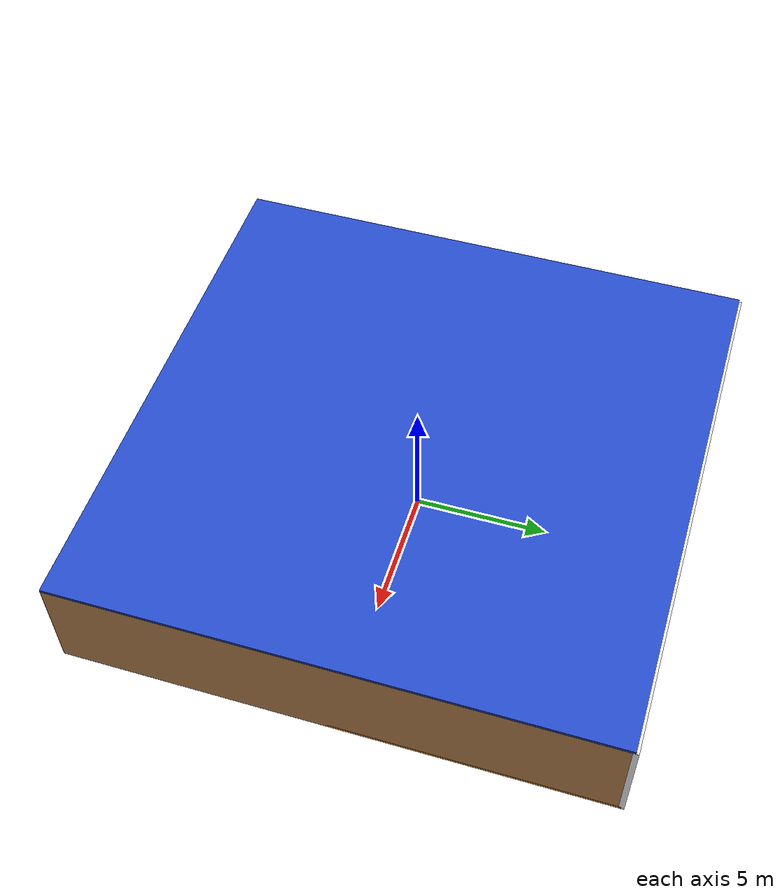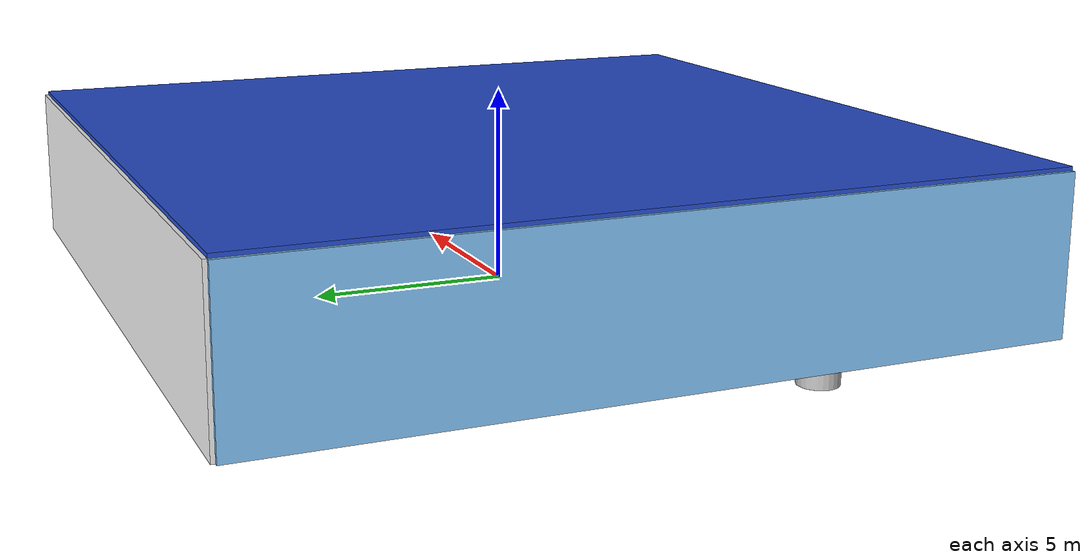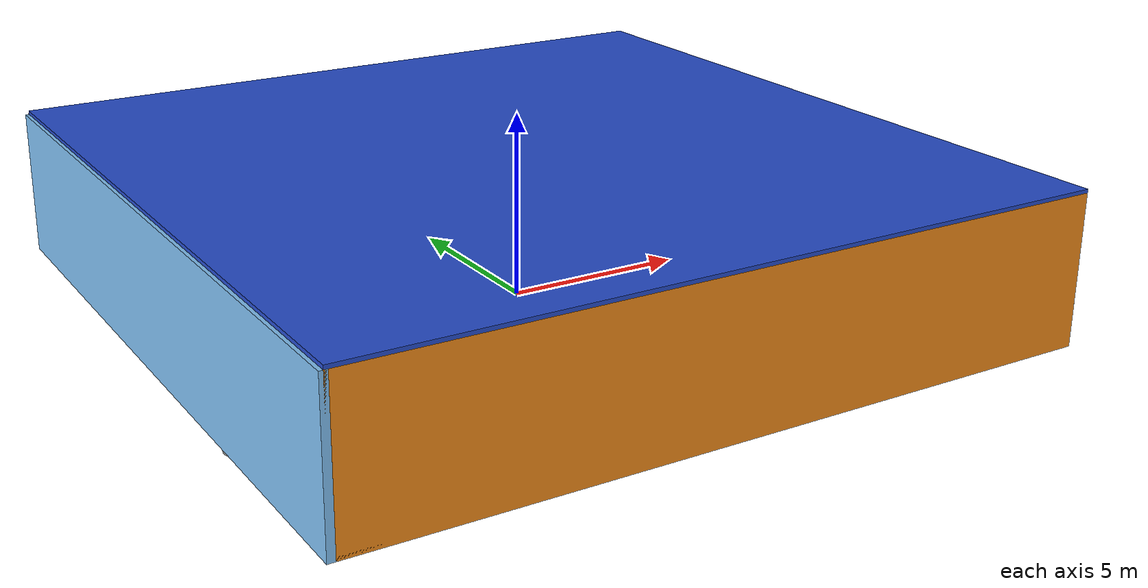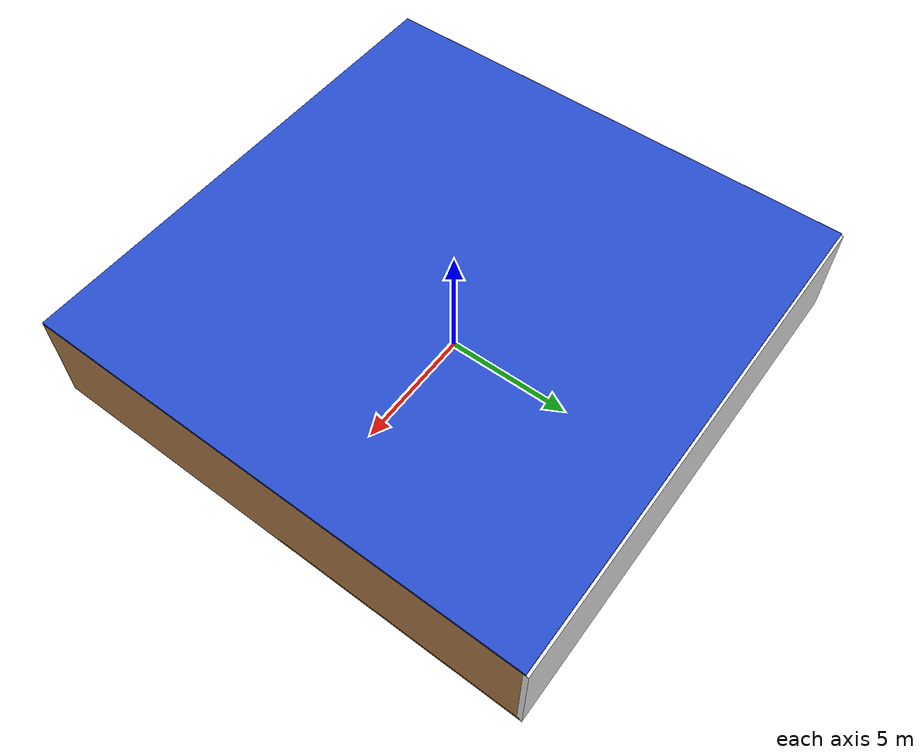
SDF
<sdf version="1.4">
 <world name="default">
  <physics type="ode">
   <max_step_size>0.001</max_step_size>
   <real_time_factor>1</real_time_factor>
   <real_time_update_rate>1000</real_time_update_rate>
   <gravity>0 0 -9.8</gravity>
  </physics>
  <scene><ambient>0.4 0.4 0.4 1</ambient><background>0.7 0.7 0.7 1</background><shadows>1</shadows></scene>
  <model name="Surrounding">
   <static>1</static>
   <link name="Ceiling">
    <collision name="Ceiling_Collision"><geometry><box><size>20 20 0.1</size></box></geometry></collision>
    <visual name="Ceiling_Visual">
     <geometry><box><size>20 20 0.1</size></box></geometry>
     <material>
      <script><uri>file://media/materials/scripts/gazebo.material</uri><name>Gazebo/BlueGlow</name></script>
     </material>
    </visual>
    <pose>0 0 4.05 0 0 0</pose>
   </link>
   <link name="Wall_South">
    <collision name="Wall_South_Collision">
     <geometry><box><size>20 0 4</size></box></geometry>
     <pose>0 0 2 0 -0 0</pose>
    </collision>
    <visual name="Wall_South_Visual">
     <pose>0 0 2 0 -0 0</pose>
     <geometry><box><size>20 0 4</size></box></geometry>
     <material>
      <script><uri>file://media/materials/scripts/gazebo.material</uri><name>Gazebo/Orange</name></script>
     </material>
    </visual>
    <velocity_decay><linear>0</linear><angular>0</angular></velocity_decay>
    <pose>0 -10 0 0 -0 0</pose>
   </link>
   <link name="Wall_East">
    <collision name="Wall_21_Collision">
     <geometry><box><size>20 0 4</size></box></geometry>
     <pose>0 0 2 0 -0 0</pose>
    </collision>
    <visual name="Wall_21_Visual">
     <pose>0 0 2 0 -0 0</pose>
     <geometry><box><size>20 0 4</size></box></geometry>
     <material>
      <script><uri>file://media/materials/scripts/gazebo.material</uri><name>Gazebo/WoodPallet</name></script>
     </material>
    </visual>
    <velocity_decay><linear>0</linear><angular>0</angular></velocity_decay>
    <pose>10 0 0 0 -0 1.5708</pose>
   </link>
   <link name="Wall_North">
    <collision name="Wall_22_Collision">
     <geometry><box><size>20 0.2 4</size></box></geometry>
     <pose>0 0 2 0 -0 0</pose>
    </collision>
    <visual name="Wall_22_Visual">
     <pose>0 0 2 0 -0 0</pose>
     <geometry><box><size>20 0.2 4</size></box></geometry>
     <material>
      <script><uri>file://media/materials/scripts/gazebo.material</uri><name>Gazebo/WhiteGlow</name></script>
     </material>
    </visual>
    <velocity_decay><linear>0</linear><angular>0</angular></velocity_decay>
    <pose>0 10 0 0 -0 0</pose>
   </link>
   <link name="Wall_West">
    <collision name="Wall_23_Collision">
     <geometry><box><size>20 0.2 4</size></box></geometry>
     <pose>0 0 2 0 -0 0</pose>
    </collision>
    <visual name="Wall_23_Visual">
     <pose>0 0 2 0 -0 0</pose>
     <geometry><box><size>20 0.2 4</size></box></geometry>
     <material>
      <script><uri>file://media/materials/scripts/gazebo.material</uri><name>Gazebo/SkyBlue</name></script>
     </material>
    </visual>
    <velocity_decay><linear>0</linear><angular>0</angular></velocity_decay>
    <pose>-10 0 0 0 0 -1.5708</pose>
   </link>
   <link name="Ground_link">
    <collision name="collision">
     <pose>0 0 .05 0 -0 0</pose>
     <geometry><box><size>20 20 0.1</size></box></geometry>
    </collision>
    <visual name="visual">
     <pose>0 0 .05 0 -0 0</pose>
     <geometry><box><size>20 20 0.1</size></box></geometry>
     <material>
      <script><uri>file://media/materials/scripts/gazebo.material</uri><name>Gazebo/Orange</name></script>
     </material>
    </visual>
   </link>
   <static>1</static>
  </model>
  <spherical_coordinates>
   <surface_model>EARTH_WGS84</surface_model>
   <latitude_deg>0</latitude_deg>
   <longitude_deg>0</longitude_deg>
   <elevation>0</elevation>
   <heading_deg>0</heading_deg>
  </spherical_coordinates>
  <light name="lightball_0" type="diffuse">
   <diffuse>0.8 0.8 0.8 1</diffuse>
   <specular>0.2 0.2 0.2 1</specular>
   <attenuation>
    <range>100</range>
    <constant>0.7</constant>
    <linear>0.01</linear>
    <quadratic>0.001</quadratic>
   </attenuation>
   <direction>-0.5 0.1 -0.9</direction>
   <pose>-4.13676849219 4.25691930839 2.07921175393 0 0 0</pose>
  </light>
  <light name="lightball_1" type="diffuse">
   <diffuse>0.8 0.8 0.8 1</diffuse>
   <specular>0.2 0.2 0.2 1</specular>
   <attenuation>
    <range>100</range>
    <constant>0.7</constant>
    <linear>0.01</linear>
    <quadratic>0.001</quadratic>
   </attenuation>
   <direction>-0.5 0.1 -0.9</direction>
   <pose>-3.26925278648 -3.72087020676 2.4306979879 0 0 0</pose>
  </light>
  <include>
   <uri>model://textured_shapes</uri>
   <pose>-7.90653744121 -4.35280417608 0 0 0 1.21741488336</pose>
  </include>
  <include><uri>model://table</uri><pose>-8.10125895284 7.20824329241 0 0 0 2.86650059225</pose></include>
  <include>
   <uri>model://robocup_3Dsim_goal</uri>
   <pose>-3.76574061717 -7.22533783715 0 0 0 1.05806606768</pose>
  </include>
  <include><uri>model://cabinet</uri><pose>-3.942608814 -4.97175571604 0 0 0 2.10283727256</pose></include>
  <include><uri>model://cabinet</uri><pose>-1.29046920274 1.1657268761 0 0 0 0.666071125318</pose></include>
  <include><uri>model://table</uri><pose>1.03157268549 -8.05543874242 0 0 0 0.746665386447</pose></include>
  <include><uri>model://cabinet</uri><pose>2.01418055075 -0.881402710724 0 0 0 1.31936067077</pose></include>
  <include>
   <uri>model://robocup_3Dsim_goal</uri>
   <pose>1.45734798652 2.06881608552 0 0 0 0.29628483391</pose>
  </include>
  <include>
   <uri>model://robocup_3Dsim_goal</uri>
   <pose>1.17436557182 6.88144955782 0 0 0 2.08075008559</pose>
  </include>
  <include>
   <uri>model://robocup_3Dsim_goal</uri>
   <pose>6.88058949186 3.85919636023 0 0 0 2.61103079208</pose>
  </include>
 </world>
</sdf>

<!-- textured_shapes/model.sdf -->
<sdf version="1.6">
  <model name="textured_shapes">
    <pose>0 0 0.5 0 0 0</pose>
    <link name="box">
      <pose>0 -1.5 0 0 0 0</pose>
      <collision name="collision">
        <geometry>
          <box>
            <size>1 1 1</size>
          </box>
        </geometry>
      </collision>
      <visual name="visual">
        <geometry>
          <box>
            <size>1 1 1</size>
          </box>
        </geometry>
        <material>
          <script>
            <uri>model://../model_source/models/textured_shapes/materials/scripts</uri>
            <uri>model://../model_source/models/textured_shapes/materials/textures</uri>
            <name>TexturedShape/Squares</name>
          </script>
        </material>
      </visual>
    </link>
    <link name="sphere">
      <collision name="collision">
        <geometry>
          <sphere>
            <radius>0.5</radius>
          </sphere>
        </geometry>
      </collision>
      <visual name="visual">
        <geometry>
          <sphere>
            <radius>0.5</radius>
          </sphere>
        </geometry>
        <material>
          <script>
            <uri>model://../model_source/models/textured_shapes/materials/scripts</uri>
            <uri>model://../model_source/models/textured_shapes/materials/textures</uri>
            <name>TexturedShape/Squares</name>
          </script>
        </material>
      </visual>
    </link>
    <link name="cylinder">
      <pose>0 1.5 0 0 0 0</pose>
      <collision name="collision">
        <geometry>
          <cylinder>
            <radius>0.5</radius>
            <length>1</length>
          </cylinder>
        </geometry>
      </collision>
      <visual name="visual">
        <geometry>
          <cylinder>
            <radius>0.5</radius>
            <length>1</length>
          </cylinder>
        </geometry>
        <material>
          <script>
            <uri>model://../model_source/models/textured_shapes/materials/scripts</uri>
            <uri>model://../model_source/models/textured_shapes/materials/textures</uri>
            <name>TexturedShape/Squares</name>
          </script>
        </material>
      </visual>
    </link>
  </model>
</sdf>

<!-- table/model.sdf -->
<sdf version="1.5">
  <model name="table">
    <static>true</static>
    <link name="link">
      <collision name="surface">
        <pose>0 0 1.0 0 0 0</pose>
        <geometry>
          <box>
            <size>1.5 0.8 0.03</size>
          </box>
        </geometry>
        <surface>
          <friction>
            <ode>
              <mu>0.6</mu>
              <mu2>0.6</mu2>
            </ode>
          </friction>
        </surface>
      </collision>
      <visual name="visual1">
        <pose>0 0 1.0 0 0 0</pose>
        <geometry>
          <box>
            <size>1.5 0.8 0.03</size>
          </box>
        </geometry>
        <material>
          <script>
            <uri>model://media/materials/scripts/gazebo.material</uri>
            <name>Gazebo/Wood</name>
          </script>
        </material>
      </visual>
      <collision name="front_left_leg">
        <pose>0.68 0.38 0.5 0 0 0</pose>
        <geometry>
          <cylinder>
            <radius>0.02</radius>
            <length>1.0</length>
          </cylinder>
        </geometry>
      </collision>
      <visual name="front_left_leg">
        <pose>0.68 0.38 0.5 0 0 0</pose>
        <geometry>
          <cylinder>
            <radius>0.02</radius>
            <length>1.0</length>
          </cylinder>
        </geometry>
        <material>
          <script>
            <uri>model://media/materials/scripts/gazebo.material</uri>
            <name>Gazebo/Grey</name>
          </script>
        </material>
      </visual>
      <collision name="front_right_leg">
        <pose>0.68 -0.38 0.5 0 0 0</pose>
        <geometry>
          <cylinder>
            <radius>0.02</radius>
            <length>1.0</length>
          </cylinder>
        </geometry>
      </collision>
      <visual name="front_right_leg">
        <pose>0.68 -0.38 0.5 0 0 0</pose>
        <geometry>
          <cylinder>
            <radius>0.02</radius>
            <length>1.0</length>
          </cylinder>
        </geometry>
        <material>
          <script>
            <uri>model://media/materials/scripts/gazebo.material</uri>
            <name>Gazebo/Grey</name>
          </script>
        </material>
      </visual>
      <collision name="back_right_leg">
        <pose>-0.68 -0.38 0.5 0 0 0</pose>
        <geometry>
          <cylinder>
            <radius>0.02</radius>
            <length>1.0</length>
          </cylinder>
        </geometry>
      </collision>
      <visual name="back_right_leg">
        <pose>-0.68 -0.38 0.5 0 0 0</pose>
        <geometry>
          <cylinder>
            <radius>0.02</radius>
            <length>1.0</length>
          </cylinder>
        </geometry>
        <material>
          <script>
            <uri>model://media/materials/scripts/gazebo.material</uri>
            <name>Gazebo/Grey</name>
          </script>
        </material>
      </visual>
      <collision name="back_left_leg">
        <pose>-0.68 0.38 0.5 0 0 0</pose>
        <geometry>
          <cylinder>
            <radius>0.02</radius>
            <length>1.0</length>
          </cylinder>
        </geometry>
      </collision>
      <visual name="back_left_leg">
        <pose>-0.68 0.38 0.5 0 0 0</pose>
        <geometry>
          <cylinder>
            <radius>0.02</radius>
            <length>1.0</length>
          </cylinder>
        </geometry>
        <material>
          <script>
            <uri>model://media/materials/scripts/gazebo.material</uri>
            <name>Gazebo/Grey</name>
          </script>
        </material>
      </visual>
    </link>
  </model>
</sdf>

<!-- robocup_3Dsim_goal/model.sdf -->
<sdf version="1.5">
  <model name="robocup_3d_goal">
    <static>true</static>
    <link name="left_post">
      <pose>0 1.05 0.45 0 0 0</pose>
      <collision name="collision">
        <geometry>
          <cylinder>
            <radius>0.05</radius>
            <length>0.9</length>
          </cylinder>
        </geometry>
      </collision>
      <visual name="visual">
        <geometry>
          <cylinder>
            <radius>0.05</radius>
            <length>0.9</length>
          </cylinder>
        </geometry>
        <material>
          <script>
            <uri>file://media/materials/scripts/gazebo.material</uri>
            <name>Gazebo/ZincYellow</name>
          </script>
        </material>
      </visual>
    </link>
    <link name="left_support_horiz_lower">
      <pose>0.30 1.05 0.01 0 0 0</pose>
      <collision name="collision">
        <geometry>
          <box>
            <size>0.50 0.02 0.02</size>
          </box>
        </geometry>
      </collision>
      <visual name="visual">
        <geometry>
          <box>
            <size>0.50 0.02 0.02</size>
          </box>
        </geometry>
        <material>
          <script>
            <uri>file://media/materials/scripts/gazebo.material</uri>
            <name>Gazebo/White</name>
          </script>
        </material>
      </visual>
    </link>
    <link name="left_support_horiz_upper">
      <pose>0.30 1.05 0.79 0 0 0</pose>
      <collision name="collision">
        <geometry>
          <box>
            <size>0.50 0.02 0.02</size>
          </box>
        </geometry>
      </collision>
      <visual name="visual">
        <geometry>
          <box>
            <size>0.50 0.02 0.02</size>
          </box>
        </geometry>
        <material>
          <script>
            <uri>file://media/materials/scripts/gazebo.material</uri>
            <name>Gazebo/White</name>
          </script>
        </material>
      </visual>
    </link>
    <link name="left_support_vertical">
      <pose>0.56 1.05 0.4 0 1.5708 0</pose>
      <collision name="collision">
        <geometry>
          <box>
            <size>0.80 0.02 0.02</size>
          </box>
        </geometry>
      </collision>
      <visual name="visual">
        <geometry>
          <box>
            <size>0.80 0.02 0.02</size>
          </box>
        </geometry>
        <material>
          <script>
            <uri>file://media/materials/scripts/gazebo.material</uri>
            <name>Gazebo/White</name>
          </script>
        </material>
      </visual>
    </link>
    <link name="right_support_horiz_lower">
      <pose>0.30 -1.05 0.01 0 0 0</pose>
      <collision name="collision">
        <geometry>
          <box>
            <size>0.50 0.02 0.02</size>
          </box>
        </geometry>
      </collision>
      <visual name="visual">
        <geometry>
          <box>
            <size>0.50 0.02 0.02</size>
          </box>
        </geometry>
        <material>
          <script>
            <uri>file://media/materials/scripts/gazebo.material</uri>
            <name>Gazebo/White</name>
          </script>
        </material>
      </visual>
    </link>
    <link name="right_support_horiz_upper">
      <pose>0.30 -1.05 0.79 0 0 0</pose>
      <collision name="collision">
        <geometry>
          <box>
            <size>0.50 0.02 0.02</size>
          </box>
        </geometry>
      </collision>
      <visual name="visual">
        <geometry>
          <box>
            <size>0.50 0.02 0.02</size>
          </box>
        </geometry>
        <material>
          <script>
            <uri>file://media/materials/scripts/gazebo.material</uri>
            <name>Gazebo/White</name>
          </script>
        </material>
      </visual>
    </link>
    <link name="right_support_vertical">
      <pose>0.56 -1.05 0.4 0 1.5708 0</pose>
      <collision name="collision">
        <geometry>
          <box>
            <size>0.80 0.02 0.02</size>
          </box>
        </geometry>
      </collision>
      <visual name="visual">
        <geometry>
          <box>
            <size>0.80 0.02 0.02</size>
          </box>
        </geometry>
        <material>
          <script>
            <uri>file://media/materials/scripts/gazebo.material</uri>
            <name>Gazebo/White</name>
          </script>
        </material>
      </visual>
    </link>
    <link name="center_support_horiz_lower">
      <pose>0.56 0 0.01 0 1.5708 0</pose>
      <collision name="collision">
        <geometry>
          <box>
            <size>0.02 2.08 0.02</size>
          </box>
        </geometry>
      </collision>
      <visual name="visual">
        <geometry>
          <box>
            <size>0.02 2.08 0.02</size>
          </box>
        </geometry>
        <material>
          <script>
            <uri>file://media/materials/scripts/gazebo.material</uri>
            <name>Gazebo/White</name>
          </script>
        </material>
      </visual>
    </link>
    <link name="center_support_horiz_upper">
      <pose>0.56 0 0.79 0 1.5708 0</pose>
      <collision name="collision">
        <geometry>
          <box>
            <size>0.02 2.08 0.02</size>
          </box>
        </geometry>
      </collision>
      <visual name="visual">
        <geometry>
          <box>
            <size>0.02 2.08 0.02</size>
          </box>
        </geometry>
        <material>
          <script>
            <uri>file://media/materials/scripts/gazebo.material</uri>
            <name>Gazebo/White</name>
          </script>
        </material>
      </visual>
    </link>
    <link name="right_post">
      <pose>0 -1.05 0.45 0 0 0</pose>
      <collision name="collision">
        <geometry>
          <cylinder>
            <radius>0.05</radius>
            <length>0.9</length>
          </cylinder>
        </geometry>
      </collision>
      <visual name="visual">
        <geometry>
          <cylinder>
            <radius>0.05</radius>
            <length>0.9</length>
          </cylinder>
        </geometry>
        <material>
          <script>
            <uri>file://media/materials/scripts/gazebo.material</uri>
            <name>Gazebo/ZincYellow</name>
          </script>
        </material>
      </visual>
    </link>
    <link name="crossbar">
      <pose>0 0 0.85 1.57 1.57 0</pose>
      <collision name="collision">
        <geometry>
          <cylinder>
            <radius>0.05</radius>
            <length>2.0</length>
          </cylinder>
        </geometry>
      </collision>
      <visual name="visual">
        <geometry>
          <cylinder>
            <radius>0.05</radius>
            <length>2.0</length>
          </cylinder>
        </geometry>
        <material>
          <script>
            <uri>file://media/materials/scripts/gazebo.material</uri>
            <name>Gazebo/ZincYellow</name>
          </script>
        </material>
      </visual>
    </link>
    <link name="center_net">
      <pose>0.56 0 0.40 0 0 0</pose>
      <collision name="collision">
        <geometry>
          <box>
            <size>0.01 2.1 0.80</size>
          </box>
        </geometry>
      </collision>
      <visual name="visual">
        <geometry>
          <box>
            <size>0.01 2.1 0.80</size>
          </box>
        </geometry>
        <material>
          <script>
            <uri>model://../model_source/models/robocup09_spl_field/materials/scripts/</uri>
            <uri>model://../model_source/models/robocup09_spl_field/materials/textures/</uri>
            <name>RoboCup/Net</name>
          </script>
        </material>
      </visual>
    </link>
    <link name="left_net">
      <pose>0.30 1.05 0.40 0 0 0</pose>
      <collision name="collision">
        <geometry>
          <box>
            <size>0.50 0.01 0.76</size>
          </box>
        </geometry>
      </collision>
      <visual name="visual">
        <geometry>
          <box>
            <size>0.50 0.01 0.76</size>
          </box>
        </geometry>
        <material>
          <script>
            <uri>model://../model_source/models/robocup09_spl_field/materials/scripts/</uri>
            <uri>model://../model_source/models/robocup09_spl_field/materials/textures/</uri>
            <name>RoboCup/Net</name>
          </script>
        </material>
      </visual>
    </link>
    <link name="right_net">
      <pose>0.30 -1.05 0.40 0 0 0</pose>
      <collision name="collision">
        <geometry>
          <box>
            <size>0.50 0.01 0.76</size>
          </box>
        </geometry>
      </collision>
      <visual name="visual">
        <geometry>
          <box>
            <size>0.50 0.01 0.76</size>
          </box>
        </geometry>
        <material>
          <script>
            <uri>model://../model_source/models/robocup09_spl_field/materials/scripts/</uri>
            <uri>model://../model_source/models/robocup09_spl_field/materials/textures/</uri>
            <name>RoboCup/Net</name>
          </script>
        </material>
      </visual>
    </link>
  </model>
</sdf>

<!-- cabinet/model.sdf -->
<sdf version="1.5">
  <model name="cabinet">
    <static>true</static>
    <link name="cabinet_bottom_plate">
      <inertial>
        <pose>0 0 -1 0 0 0</pose>
        <inertia>
          <ixx>2.050000</ixx>
          <ixy>0</ixy>
          <ixz>0</ixz>
          <iyy>2.050000</iyy>
          <iyz>0</iyz>
          <izz>2.050000</izz>
        </inertia>
        <mass>25.000000</mass>
      </inertial>
      <collision name="cabinet_bottom_plate_geom">
        <pose>0 0 0.010000 0 0 0</pose>
        <geometry>
          <box>
            <size>0.450000 0.450000 0.020000</size>
          </box>
        </geometry>
      </collision>
      <visual name="cabinet_bottom_plate_geom_visual">
        <pose>0 0 0.010000 0 0 0</pose>
        <geometry>
          <box>
            <size>0.450000 0.450000 0.020000</size>
          </box>
        </geometry>
        <material>
          <script>
            <uri>model://media/materials/scripts/gazebo.material</uri>
            <name>Gazebo/Wood</name>
          </script>
        </material>
      </visual>
      <collision name="cabinet_bottom_plate_geom_cabinet_back_plate">
        <pose>0.235000 0 0.510000 0 0 0</pose>
        <geometry>
          <box>
            <size>0.020000 0.450000 1.020000</size>
          </box>
        </geometry>
      </collision>
      <visual name="cabinet_bottom_plate_geom_cabinet_back_plate_visual">
        <pose>0.235000 0 0.510000 0 0 0</pose>
        <geometry>
          <box>
            <size>0.020000 0.450000 1.020000</size>
          </box>
        </geometry>
        <material>
          <script>
            <uri>model://media/materials/scripts/gazebo.material</uri>
            <name>Gazebo/Wood</name>
          </script>
        </material>
      </visual>
      <collision name="cabinet_bottom_plate_geom_cabinet_left_plate">
        <pose>0 0.235000 0.510000 0 0 0</pose>
        <geometry>
          <box>
            <size>0.450000 0.020000 1.020000</size>
          </box>
        </geometry>
      </collision>
      <visual name="cabinet_bottom_plate_geom_cabinet_left_plate_visual">
        <pose>0 0.235000 0.510000 0 0 0</pose>
        <geometry>
          <box>
            <size>0.450000 0.020000 1.020000</size>
          </box>
        </geometry>
        <material>
          <script>
            <uri>model://media/materials/scripts/gazebo.material</uri>
            <name>Gazebo/Wood</name>
          </script>
        </material>
      </visual>
      <collision name="cabinet_bottom_plate_geom_cabinet_middle_plate">
        <pose>0 0 0.510000 0 0 0</pose>
        <geometry>
          <box>
            <size>0.450000 0.450000 0.020000</size>
          </box>
        </geometry>
      </collision>
      <visual name="cabinet_bottom_plate_geom_cabinet_middle_plate_visual">
        <pose>0 0 0.510000 0 0 0</pose>
        <geometry>
          <box>
            <size>0.450000 0.450000 0.020000</size>
          </box>
        </geometry>
        <material>
          <script>
            <uri>model://media/materials/scripts/gazebo.material</uri>
            <name>Gazebo/Wood</name>
          </script>
        </material>
      </visual>
      <collision name="cabinet_bottom_plate_geom_cabinet_right_plate">
        <pose>0 -0.235000 0.510000 0 0 0</pose>
        <geometry>
          <box>
            <size>0.450000 0.020000 1.020000</size>
          </box>
        </geometry>
      </collision>
      <visual name="cabinet_bottom_plate_geom_cabinet_right_plate_visual">
        <pose>0 -0.235000 0.510000 0 0 0</pose>
        <geometry>
          <box>
            <size>0.450000 0.020000 1.020000</size>
          </box>
        </geometry>
        <material>
          <script>
            <uri>model://media/materials/scripts/gazebo.material</uri>
            <name>Gazebo/Wood</name>
          </script>
        </material>
      </visual>
      <collision name="cabinet_bottom_plate_geom_cabinet_top_plate">
        <pose>0 0 1.010000 0 0 0</pose>
        <geometry>
          <box>
            <size>0.450000 0.450000 0.020000</size>
          </box>
        </geometry>
      </collision>
      <visual name="cabinet_bottom_plate_geom_cabinet_top_plate_visual">
        <pose>0 0 1.010000 0 0 0</pose>
        <geometry>
          <box>
            <size>0.450000 0.450000 0.020000</size>
          </box>
        </geometry>
        <material>
          <script>
            <uri>model://media/materials/scripts/gazebo.material</uri>
            <name>Gazebo/Wood</name>
          </script>
        </material>
      </visual>
    </link>
  </model>
</sdf>
